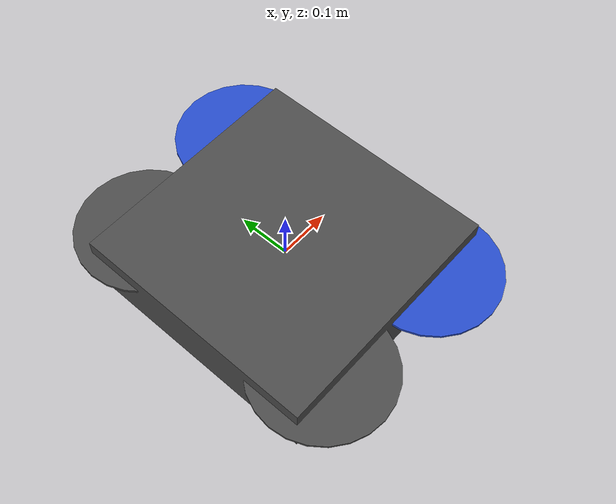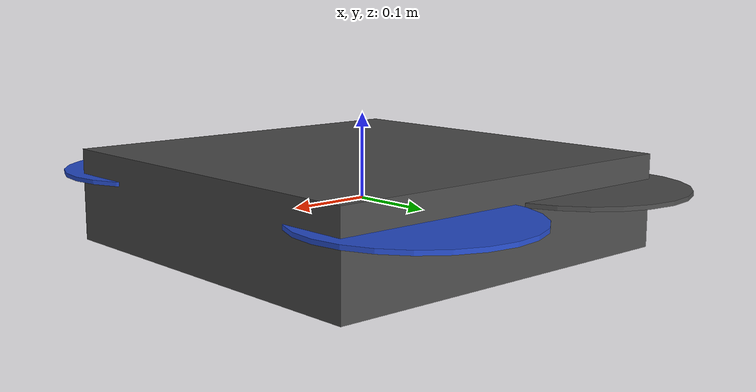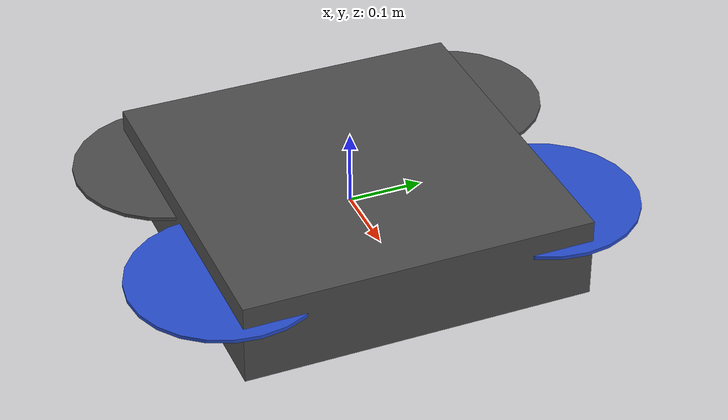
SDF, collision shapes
<sdf version='1.6'>
  <model name='iris'>
    <link name='base_link'>
      <pose frame=''>0 0 0 0 -0 0</pose>
      <inertial>
        <pose frame=''>0 0 0 0 -0 0</pose>
        <mass>1.5</mass>
        <inertia>
          <ixx>0.0347563</ixx>
          <ixy>0</ixy>
          <ixz>0</ixz>
          <iyy>0.0458929</iyy>
          <iyz>0</iyz>
          <izz>0.0977</izz>
        </inertia>
      </inertial>
      <collision name='base_link_inertia_collision'>
        <pose frame=''>0 0 0 0 -0 0</pose>
        <geometry>
          <box>
            <size>0.47 0.47 0.11</size>
          </box>
        </geometry>
        <surface>
          <contact>
            <ode>
              <min_depth>0.001</min_depth>
              <max_vel>0</max_vel>
            </ode>
          </contact>
          <friction>
            <ode/>
          </friction>
        </surface>
      </collision>
      <visual name='base_link_inertia_visual'>
        <pose frame=''>0 0 0 0 -0 0</pose>
        <geometry>
          <mesh>
            <scale>1 1 1</scale>
            <uri>model://rotors_description/meshes/iris.stl</uri>
          </mesh>
        </geometry>
        <material>
          <script>
            <name>Gazebo/DarkGrey</name>
            <uri>file://media/materials/scripts/gazebo.material</uri>
          </script>
        </material>
      </visual>
      <gravity>1</gravity>
      <velocity_decay/>
      <self_collide>0</self_collide>
    </link>
    <link name='/imu_link'>
      <pose frame=''>0 0 0 0 -0 0</pose>
      <inertial>
        <pose frame=''>0 0 0 0 -0 0</pose>
        <mass>0.015</mass>
        <inertia>
          <ixx>1e-05</ixx>
          <ixy>0</ixy>
          <ixz>0</ixz>
          <iyy>1e-05</iyy>
          <iyz>0</iyz>
          <izz>1e-05</izz>
        </inertia>
      </inertial>
    </link>
    <joint name='/imu_joint' type='revolute'>
      <child>/imu_link</child>
      <parent>base_link</parent>
      <axis>
        <xyz>1 0 0</xyz>
        <limit>
          <lower>0</lower>
          <upper>0</upper>
          <effort>0</effort>
          <velocity>0</velocity>
        </limit>
        <dynamics>
          <spring_reference>0</spring_reference>
          <spring_stiffness>0</spring_stiffness>
        </dynamics>
        <use_parent_model_frame>1</use_parent_model_frame>
      </axis>
    </joint>
    <link name='rotor_0'>
      <pose frame=''>0.126 -0.218 0.023 0 -0 0</pose>
      <inertial>
        <pose frame=''>0 0 0 0 -0 0</pose>
        <mass>0.005</mass>
        <inertia>
          <ixx>9.75e-07</ixx>
          <ixy>0</ixy>
          <ixz>0</ixz>
          <iyy>0.000273104</iyy>
          <iyz>0</iyz>
          <izz>0.000274004</izz>
        </inertia>
      </inertial>
      <collision name='rotor_0_collision'>
        <pose frame=''>0 0 0 0 -0 0</pose>
        <geometry>
          <cylinder>
            <length>0.005</length>
            <radius>0.128</radius>
          </cylinder>
        </geometry>
        <surface>
          <contact>
            <ode/>
          </contact>
          <friction>
            <ode/>
          </friction>
        </surface>
      </collision>
      <visual name='rotor_0_visual'>
        <pose frame=''>0 0 0 0 -0 0</pose>
        <geometry>
          <mesh>
            <scale>1 1 1</scale>
            <uri>model://rotors_description/meshes/iris_prop_ccw.dae</uri>
          </mesh>
        </geometry>
        <material>
          <script>
            <name>Gazebo/Blue</name>
            <uri>file://media/materials/scripts/gazebo.material</uri>
          </script>
        </material>
      </visual>
      <gravity>1</gravity>
      <velocity_decay/>
      <self_collide>0</self_collide>
    </link>
    <joint name='rotor_0_joint' type='revolute'>
      <child>rotor_0</child>
      <parent>base_link</parent>
      <axis>
        <xyz>0 0 1</xyz>
        <limit>
          <lower>-1e+16</lower>
          <upper>1e+16</upper>
        </limit>
        <dynamics>
          <spring_reference>0</spring_reference>
          <spring_stiffness>0</spring_stiffness>
        </dynamics>
        <use_parent_model_frame>1</use_parent_model_frame>
      </axis>
    </joint>
    <link name='rotor_1'>
      <pose frame=''>-0.138 0.203 0.023 0 -0 0</pose>
      <inertial>
        <pose frame=''>0 0 0 0 -0 0</pose>
        <mass>0.005</mass>
        <inertia>
          <ixx>9.75e-07</ixx>
          <ixy>0</ixy>
          <ixz>0</ixz>
          <iyy>0.000273104</iyy>
          <iyz>0</iyz>
          <izz>0.000274004</izz>
        </inertia>
      </inertial>
      <collision name='rotor_1_collision'>
        <pose frame=''>0 0 0 0 -0 0</pose>
        <geometry>
          <cylinder>
            <length>0.005</length>
            <radius>0.128</radius>
          </cylinder>
        </geometry>
        <surface>
          <contact>
            <ode/>
          </contact>
          <friction>
            <ode/>
          </friction>
        </surface>
      </collision>
      <visual name='rotor_1_visual'>
        <pose frame=''>0 0 0 0 -0 0</pose>
        <geometry>
          <mesh>
            <scale>1 1 1</scale>
            <uri>model://rotors_description/meshes/iris_prop_ccw.dae</uri>
          </mesh>
        </geometry>
        <material>
          <script>
            <name>Gazebo/DarkGrey</name>
            <uri>file://media/materials/scripts/gazebo.material</uri>
          </script>
        </material>
      </visual>
      <gravity>1</gravity>
      <velocity_decay/>
      <self_collide>0</self_collide>
    </link>
    <joint name='rotor_1_joint' type='revolute'>
      <child>rotor_1</child>
      <parent>base_link</parent>
      <axis>
        <xyz>0 0 1</xyz>
        <limit>
          <lower>-1e+16</lower>
          <upper>1e+16</upper>
        </limit>
        <dynamics>
          <spring_reference>0</spring_reference>
          <spring_stiffness>0</spring_stiffness>
        </dynamics>
        <use_parent_model_frame>1</use_parent_model_frame>
      </axis>
    </joint>
    <link name='rotor_2'>
      <pose frame=''>0.126 0.218 0.023 0 -0 0</pose>
      <inertial>
        <pose frame=''>0 0 0 0 -0 0</pose>
        <mass>0.005</mass>
        <inertia>
          <ixx>9.75e-07</ixx>
          <ixy>0</ixy>
          <ixz>0</ixz>
          <iyy>0.000273104</iyy>
          <iyz>0</iyz>
          <izz>0.000274004</izz>
        </inertia>
      </inertial>
      <collision name='rotor_2_collision'>
        <pose frame=''>0 0 0 0 -0 0</pose>
        <geometry>
          <cylinder>
            <length>0.005</length>
            <radius>0.128</radius>
          </cylinder>
        </geometry>
        <surface>
          <contact>
            <ode/>
          </contact>
          <friction>
            <ode/>
          </friction>
        </surface>
      </collision>
      <visual name='rotor_2_visual'>
        <pose frame=''>0 0 0 0 -0 0</pose>
        <geometry>
          <mesh>
            <scale>1 1 1</scale>
            <uri>model://rotors_description/meshes/iris_prop_cw.dae</uri>
          </mesh>
        </geometry>
        <material>
          <script>
            <name>Gazebo/Blue</name>
            <uri>file://media/materials/scripts/gazebo.material</uri>
          </script>
        </material>
      </visual>
      <gravity>1</gravity>
      <velocity_decay/>
      <self_collide>0</self_collide>
    </link>
    <joint name='rotor_2_joint' type='revolute'>
      <child>rotor_2</child>
      <parent>base_link</parent>
      <axis>
        <xyz>0 0 1</xyz>
        <limit>
          <lower>-1e+16</lower>
          <upper>1e+16</upper>
        </limit>
        <dynamics>
          <spring_reference>0</spring_reference>
          <spring_stiffness>0</spring_stiffness>
        </dynamics>
        <use_parent_model_frame>1</use_parent_model_frame>
      </axis>
    </joint>
    <link name='rotor_3'>
      <pose frame=''>-0.138 -0.203 0.023 0 -0 0</pose>
      <inertial>
        <pose frame=''>0 0 0 0 -0 0</pose>
        <mass>0.005</mass>
        <inertia>
          <ixx>9.75e-07</ixx>
          <ixy>0</ixy>
          <ixz>0</ixz>
          <iyy>0.000273104</iyy>
          <iyz>0</iyz>
          <izz>0.000274004</izz>
        </inertia>
      </inertial>
      <collision name='rotor_3_collision'>
        <pose frame=''>0 0 0 0 -0 0</pose>
        <geometry>
          <cylinder>
            <length>0.005</length>
            <radius>0.128</radius>
          </cylinder>
        </geometry>
        <surface>
          <contact>
            <ode/>
          </contact>
          <friction>
            <ode/>
          </friction>
        </surface>
      </collision>
      <visual name='rotor_3_visual'>
        <pose frame=''>0 0 0 0 -0 0</pose>
        <geometry>
          <mesh>
            <scale>1 1 1</scale>
            <uri>model://rotors_description/meshes/iris_prop_cw.dae</uri>
          </mesh>
        </geometry>
        <material>
          <script>
            <name>Gazebo/DarkGrey</name>
            <uri>file://media/materials/scripts/gazebo.material</uri>
          </script>
        </material>
      </visual>
      <gravity>1</gravity>
      <velocity_decay/>
      <self_collide>0</self_collide>
    </link>
    <joint name='rotor_3_joint' type='revolute'>
      <child>rotor_3</child>
      <parent>base_link</parent>
      <axis>
        <xyz>0 0 1</xyz>
        <limit>
          <lower>-1e+16</lower>
          <upper>1e+16</upper>
        </limit>
        <dynamics>
          <spring_reference>0</spring_reference>
          <spring_stiffness>0</spring_stiffness>
        </dynamics>
        <use_parent_model_frame>1</use_parent_model_frame>
      </axis>
    </joint>
    <link name='nozzle_0'>
      <pose frame=''>0.126 -0.218 0.013 0 -0 1.95</pose>
      <inertial>
        <pose frame=''>0 0 0 0 -0 0</pose>
        <mass>0.005</mass>
        <inertia>
          <ixx>9.75e-07</ixx>
          <ixy>0</ixy>
          <ixz>0</ixz>
          <iyy>0.000273104</iyy>
          <iyz>0</iyz>
          <izz>0.000274004</izz>
        </inertia>
      </inertial>
      <collision name='nozzle_0_collision'>
        <pose frame=''>0 0 0 0 -0 0</pose>
        <geometry>
          <cylinder>
            <length>0.005</length>
            <radius>0.001</radius>
          </cylinder>
        </geometry>
        <surface>
          <contact>
            <ode/>
          </contact>
          <friction>
            <ode/>
          </friction>
        </surface>
      </collision>
      <visual name='nozzle_0_visual'>
        <pose frame=''>0 0 0 0 -0 0</pose>
        <geometry>
          <mesh>
            <scale>1 1 1</scale>
            <uri>model://rotors_description/meshes/iris_prop_ccw.dae</uri>
          </mesh>
        </geometry>
        <material>
          <script>
            <name>Gazebo/Blue</name>
            <uri>file://media/materials/scripts/gazebo.material</uri>
          </script>
        </material>
      </visual>
      <gravity>1</gravity>
      <velocity_decay/>
      <self_collide>0</self_collide>
    </link>
    <joint name='nozzle_0_joint' type='revolute'>
      <child>nozzle_0</child>
      <parent>base_link</parent>
      <axis>
        <xyz>0 0 1</xyz>
        <limit>
          <lower>0</lower>
          <upper>0</upper>
        </limit>
        <dynamics>
          <spring_reference>0</spring_reference>
          <spring_stiffness>0</spring_stiffness>
        </dynamics>
        <use_parent_model_frame>1</use_parent_model_frame>
      </axis>
    </joint>
    <link name='nozzle_1'>
      <pose frame=''>-0.138 0.203 0.013 0 -0 -1.06</pose>
      <inertial>
        <pose frame=''>0 0 0 0 -0 0</pose>
        <mass>0.005</mass>
        <inertia>
          <ixx>9.75e-07</ixx>
          <ixy>0</ixy>
          <ixz>0</ixz>
          <iyy>0.000273104</iyy>
          <iyz>0</iyz>
          <izz>0.000274004</izz>
        </inertia>
      </inertial>
      <collision name='nozzle_1_collision'>
        <pose frame=''>0 0 0 0 -0 0</pose>
        <geometry>
          <cylinder>
            <length>0.005</length>
            <radius>0.001</radius>
          </cylinder>
        </geometry>
        <surface>
          <contact>
            <ode/>
          </contact>
          <friction>
            <ode/>
          </friction>
        </surface>
      </collision>
      <visual name='nozzle_1_visual'>
        <pose frame=''>0 0 0 0 -0 0</pose>
        <geometry>
          <mesh>
            <scale>1 1 1</scale>
            <uri>model://rotors_description/meshes/iris_prop_ccw.dae</uri>
          </mesh>
        </geometry>
        <material>
          <script>
            <name>Gazebo/DarkGrey</name>
            <uri>file://media/materials/scripts/gazebo.material</uri>
          </script>
        </material>
      </visual>
      <gravity>1</gravity>
      <velocity_decay/>
      <self_collide>0</self_collide>
    </link>
    <joint name='nozzle_1_joint' type='revolute'>
      <child>nozzle_1</child>
      <parent>base_link</parent>
      <axis>
        <xyz>0 0 1</xyz>
        <limit>
          <lower>0</lower>
          <upper>0</upper>
        </limit>
        <dynamics>
          <spring_reference>0</spring_reference>
          <spring_stiffness>0</spring_stiffness>
        </dynamics>
        <use_parent_model_frame>1</use_parent_model_frame>
      </axis>
    </joint>
    <link name='nozzle_2'>
      <pose frame=''>0.126 0.218 0.013 0 -0 -1.95</pose>
      <inertial>
        <pose frame=''>0 0 0 0 -0 0</pose>
        <mass>0.005</mass>
        <inertia>
          <ixx>9.75e-07</ixx>
          <ixy>0</ixy>
          <ixz>0</ixz>
          <iyy>0.000273104</iyy>
          <iyz>0</iyz>
          <izz>0.000274004</izz>
        </inertia>
      </inertial>
      <collision name='nozzle_2_collision'>
        <pose frame=''>0 0 0 0 -0 0</pose>
        <geometry>
          <cylinder>
            <length>0.005</length>
            <radius>0.001</radius>
          </cylinder>
        </geometry>
        <surface>
          <contact>
            <ode/>
          </contact>
          <friction>
            <ode/>
          </friction>
        </surface>
      </collision>
      <visual name='nozzle_2_visual'>
        <pose frame=''>0 0 0 0 -0 0</pose>
        <geometry>
          <mesh>
            <scale>1 1 1</scale>
            <uri>model://rotors_description/meshes/iris_prop_cw.dae</uri>
          </mesh>
        </geometry>
        <material>
          <script>
            <name>Gazebo/Blue</name>
            <uri>file://media/materials/scripts/gazebo.material</uri>
          </script>
        </material>
      </visual>
      <gravity>1</gravity>
      <velocity_decay/>
      <self_collide>0</self_collide>
    </link>
    <joint name='nozzle_2_joint' type='revolute'>
      <child>nozzle_2</child>
      <parent>base_link</parent>
      <axis>
        <xyz>0 0 1</xyz>
        <limit>
          <lower>0</lower>
          <upper>0</upper>
        </limit>
        <dynamics>
          <spring_reference>0</spring_reference>
          <spring_stiffness>0</spring_stiffness>
        </dynamics>
        <use_parent_model_frame>1</use_parent_model_frame>
      </axis>
    </joint>
    <link name='nozzle_3'>
      <pose frame=''>-0.138 -0.203 0.013 0 -0 1.06</pose>
      <inertial>
        <pose frame=''>0 0 0 0 -0 0</pose>
        <mass>0.005</mass>
        <inertia>
          <ixx>9.75e-07</ixx>
          <ixy>0</ixy>
          <ixz>0</ixz>
          <iyy>0.000273104</iyy>
          <iyz>0</iyz>
          <izz>0.000274004</izz>
        </inertia>
      </inertial>
      <collision name='nozzle_3_collision'>
        <pose frame=''>0 0 0 0 -0 0</pose>
        <geometry>
          <cylinder>
            <length>0.005</length>
            <radius>0.001</radius>
          </cylinder>
        </geometry>
        <surface>
          <contact>
            <ode/>
          </contact>
          <friction>
            <ode/>
          </friction>
        </surface>
      </collision>
      <visual name='nozzle_3_visual'>
        <pose frame=''>0 0 0 0 -0 0</pose>
        <geometry>
          <mesh>
            <scale>1 1 1</scale>
            <uri>model://rotors_description/meshes/iris_prop_cw.dae</uri>
          </mesh>
        </geometry>
        <material>
          <script>
            <name>Gazebo/DarkGrey</name>
            <uri>file://media/materials/scripts/gazebo.material</uri>
          </script>
        </material>
      </visual>
      <gravity>1</gravity>
      <velocity_decay/>
      <self_collide>0</self_collide>
    </link>
    <joint name='nozzle_3_joint' type='revolute'>
      <child>nozzle_3</child>
      <parent>base_link</parent>
      <axis>
        <xyz>0 0 1</xyz>
        <limit>
          <lower>0</lower>
          <upper>0</upper>
        </limit>
        <dynamics>
          <spring_reference>0</spring_reference>
          <spring_stiffness>0</spring_stiffness>
        </dynamics>
        <use_parent_model_frame>1</use_parent_model_frame>
      </axis>
    </joint>

    <plugin name='rosbag' filename='librotors_gazebo_multirotor_base_plugin.so'>
      <robotNamespace/>
      <linkName>base_link</linkName>
      <rotorVelocitySlowdownSim>10</rotorVelocitySlowdownSim>
    </plugin>
    <plugin name='front_right_motor_model' filename='librotors_gazebo_motor_model.so'>
      <robotNamespace/>
      <jointName>rotor_0_joint</jointName>
      <linkName>rotor_0</linkName>
      <turningDirection>ccw</turningDirection>
      <timeConstantUp>0.0125</timeConstantUp>
      <timeConstantDown>0.025</timeConstantDown>
      <maxRotVelocity>1100</maxRotVelocity>
      <motorConstant>8.54858e-06</motorConstant>
      <momentConstant>0.06</momentConstant>
      <commandSubTopic>/gazebo/command/motor_speed</commandSubTopic>
      <motorNumber>0</motorNumber>
      <rotorDragCoefficient>0.000806428</rotorDragCoefficient>
      <rollingMomentCoefficient>1e-06</rollingMomentCoefficient>
      <motorSpeedPubTopic>/motor_speed/0</motorSpeedPubTopic>
      <rotorVelocitySlowdownSim>10</rotorVelocitySlowdownSim>
    </plugin>
    <plugin name='back_left_motor_model' filename='librotors_gazebo_motor_model.so'>
      <robotNamespace/>
      <jointName>rotor_1_joint</jointName>
      <linkName>rotor_1</linkName>
      <turningDirection>ccw</turningDirection>
      <timeConstantUp>0.0125</timeConstantUp>
      <timeConstantDown>0.025</timeConstantDown>
      <maxRotVelocity>1100</maxRotVelocity>
      <motorConstant>8.54858e-06</motorConstant>
      <momentConstant>0.06</momentConstant>
      <commandSubTopic>/gazebo/command/motor_speed</commandSubTopic>
      <motorNumber>1</motorNumber>
      <rotorDragCoefficient>0.000806428</rotorDragCoefficient>
      <rollingMomentCoefficient>1e-06</rollingMomentCoefficient>
      <motorSpeedPubTopic>/motor_speed/1</motorSpeedPubTopic>
      <rotorVelocitySlowdownSim>10</rotorVelocitySlowdownSim>
    </plugin>
    <plugin name='front_left_motor_model' filename='librotors_gazebo_motor_model.so'>
      <robotNamespace/>
      <jointName>rotor_2_joint</jointName>
      <linkName>rotor_2</linkName>
      <turningDirection>cw</turningDirection>
      <timeConstantUp>0.0125</timeConstantUp>
      <timeConstantDown>0.025</timeConstantDown>
      <maxRotVelocity>1100</maxRotVelocity>
      <motorConstant>8.54858e-06</motorConstant>
      <momentConstant>0.06</momentConstant>
      <commandSubTopic>/gazebo/command/motor_speed</commandSubTopic>
      <motorNumber>2</motorNumber>
      <rotorDragCoefficient>0.000806428</rotorDragCoefficient>
      <rollingMomentCoefficient>1e-06</rollingMomentCoefficient>
      <motorSpeedPubTopic>/motor_speed/2</motorSpeedPubTopic>
      <rotorVelocitySlowdownSim>10</rotorVelocitySlowdownSim>
    </plugin>
    <plugin name='back_right_motor_model' filename='librotors_gazebo_motor_model.so'>
      <robotNamespace/>
      <jointName>rotor_3_joint</jointName>
      <linkName>rotor_3</linkName>
      <turningDirection>cw</turningDirection>
      <timeConstantUp>0.0125</timeConstantUp>
      <timeConstantDown>0.025</timeConstantDown>
      <maxRotVelocity>1100</maxRotVelocity>
      <motorConstant>8.54858e-06</motorConstant>
      <momentConstant>0.06</momentConstant>
      <commandSubTopic>/gazebo/command/motor_speed</commandSubTopic>
      <motorNumber>3</motorNumber>
      <rotorDragCoefficient>0.000806428</rotorDragCoefficient>
      <rollingMomentCoefficient>1e-06</rollingMomentCoefficient>
      <motorSpeedPubTopic>/motor_speed/3</motorSpeedPubTopic>
      <rotorVelocitySlowdownSim>10</rotorVelocitySlowdownSim>
    </plugin>
    <plugin name='front_right_nozzle_model' filename='librotors_gazebo_nozzle_model.so'>
      <robotNamespace/>
      <jointName>nozzle_0_joint</jointName>
      <linkName>nozzle_0</linkName>
      <turningDirection>ccw</turningDirection>
      <timeConstantUp>0.0125</timeConstantUp>
      <timeConstantDown>0.025</timeConstantDown>
      <maxRotVelocity>1100</maxRotVelocity>
      <motorConstant>8.54858e-06</motorConstant>
      <momentConstant>0.06</momentConstant>
      <commandSubTopic>/gazebo/command/motor_speed</commandSubTopic>
      <nozzleNumber>4</nozzleNumber>
      <rotorDragCoefficient>0.000806428</rotorDragCoefficient>
      <rollingMomentCoefficient>1e-06</rollingMomentCoefficient>
      <motorSpeedPubTopic>/nozzle_speed/0</motorSpeedPubTopic>
      <rotorVelocitySlowdownSim>10</rotorVelocitySlowdownSim>
    </plugin>
    <plugin name='back_left_nozzle_model' filename='librotors_gazebo_nozzle_model.so'>
      <robotNamespace/>
      <jointName>nozzle_1_joint</jointName>
      <linkName>nozzle_1</linkName>
      <turningDirection>ccw</turningDirection>
      <timeConstantUp>0.0125</timeConstantUp>
      <timeConstantDown>0.025</timeConstantDown>
      <maxRotVelocity>1100</maxRotVelocity>
      <motorConstant>8.54858e-06</motorConstant>
      <momentConstant>0.06</momentConstant>
      <commandSubTopic>/gazebo/command/motor_speed</commandSubTopic>
      <nozzleNumber>5</nozzleNumber>
      <rotorDragCoefficient>0.000806428</rotorDragCoefficient>
      <rollingMomentCoefficient>1e-06</rollingMomentCoefficient>
      <motorSpeedPubTopic>/nozzle_speed/1</motorSpeedPubTopic>
      <rotorVelocitySlowdownSim>10</rotorVelocitySlowdownSim>
    </plugin>
    <plugin name='front_left_nozzle_model' filename='librotors_gazebo_nozzle_model.so'>
      <robotNamespace/>
      <jointName>nozzle_2_joint</jointName>
      <linkName>nozzle_2</linkName>
      <turningDirection>cw</turningDirection>
      <timeConstantUp>0.0125</timeConstantUp>
      <timeConstantDown>0.025</timeConstantDown>
      <maxRotVelocity>1100</maxRotVelocity>
      <motorConstant>8.54858e-06</motorConstant>
      <momentConstant>0.06</momentConstant>
      <commandSubTopic>/gazebo/command/motor_speed</commandSubTopic>
      <nozzleNumber>6</nozzleNumber>
      <rotorDragCoefficient>0.000806428</rotorDragCoefficient>
      <rollingMomentCoefficient>1e-06</rollingMomentCoefficient>
      <motorSpeedPubTopic>/nozzle_speed/2</motorSpeedPubTopic>
      <rotorVelocitySlowdownSim>10</rotorVelocitySlowdownSim>
    </plugin>
    <plugin name='back_right_nozzle_model' filename='librotors_gazebo_nozzle_model.so'>
      <robotNamespace/>
      <jointName>nozzle_3_joint</jointName>
      <linkName>nozzle_3</linkName>
      <turningDirection>cw</turningDirection>
      <timeConstantUp>0.0125</timeConstantUp>
      <timeConstantDown>0.025</timeConstantDown>
      <maxRotVelocity>1100</maxRotVelocity>
      <motorConstant>8.54858e-06</motorConstant>
      <momentConstant>0.06</momentConstant>
      <commandSubTopic>/gazebo/command/motor_speed</commandSubTopic>
      <nozzleNumber>7</nozzleNumber>
      <rotorDragCoefficient>0.000806428</rotorDragCoefficient>
      <rollingMomentCoefficient>1e-06</rollingMomentCoefficient>
      <motorSpeedPubTopic>/nozzle_speed/3</motorSpeedPubTopic>
      <rotorVelocitySlowdownSim>10</rotorVelocitySlowdownSim>
    </plugin>
    <plugin name='gps_plugin' filename='libgazebo_gps_plugin.so'>
      <robotNamespace/>
      <gpsNoise>true</gpsNoise>
    </plugin>
    <plugin name='mavlink_interface' filename='librotors_gazebo_mavlink_interface.so'>
      <robotNamespace/>
      <imuSubTopic>/imu</imuSubTopic>
      <gpsSubTopic>/gps</gpsSubTopic>
      <mavlink_addr>INADDR_ANY</mavlink_addr>
      <mavlink_udp_port>14560</mavlink_udp_port>
      <serialEnabled>false</serialEnabled>
      <serialDevice>/dev/ttyACM0</serialDevice>
      <baudRate>921600</baudRate>
      <qgc_addr>INADDR_ANY</qgc_addr>
      <qgc_udp_port>14550</qgc_udp_port>
      <hil_mode>false</hil_mode>
      <hil_state_level>false</hil_state_level>
      <vehicle_is_tailsitter>false</vehicle_is_tailsitter>
      <motorSpeedCommandPubTopic>/gazebo/command/motor_speed</motorSpeedCommandPubTopic>
      <control_channels>
        <channel name='rotor1'>
          <input_index>0</input_index>
          <input_offset>0</input_offset>
          <input_scaling>1000</input_scaling>
          <zero_position_disarmed>0</zero_position_disarmed>
          <zero_position_armed>100</zero_position_armed>
          <joint_control_type>velocity</joint_control_type>
          <joint_control_pid>
            <p>0.001</p>
            <i>0.0001</i>
            <d>0.0001</d>
            <iMax>0.0</iMax>
            <iMin>0.0</iMin>
            <cmdMax>2</cmdMax>
            <cmdMin>-2</cmdMin>
          </joint_control_pid>
          <joint_name>rotor_0_joint</joint_name>
        </channel>
        <channel name='rotor2'>
          <input_index>1</input_index>
          <input_offset>0</input_offset>
          <input_scaling>1000</input_scaling>
          <zero_position_disarmed>0</zero_position_disarmed>
          <zero_position_armed>100</zero_position_armed>
          <joint_control_type>velocity</joint_control_type>
          <joint_control_pid>
            <p>0.001</p>
            <i>0.0001</i>
            <d>0.0001</d>
            <iMax>0.0</iMax>
            <iMin>0.0</iMin>
            <cmdMax>2</cmdMax>
            <cmdMin>-2</cmdMin>
          </joint_control_pid>
          <joint_name>rotor_1_joint</joint_name>
        </channel>
        <channel name='rotor3'>
          <input_index>2</input_index>
          <input_offset>0</input_offset>
          <input_scaling>1000</input_scaling>
          <zero_position_disarmed>0</zero_position_disarmed>
          <zero_position_armed>100</zero_position_armed>
          <joint_control_type>velocity</joint_control_type>
          <joint_control_pid>
            <p>0.001</p>
            <i>0.0001</i>
            <d>0.0001</d>
            <iMax>0.0</iMax>
            <iMin>0.0</iMin>
            <cmdMax>2</cmdMax>
            <cmdMin>-2</cmdMin>
          </joint_control_pid>
          <joint_name>rotor_2_joint</joint_name>
        </channel>
        <channel name='rotor4'>
          <input_index>3</input_index>
          <input_offset>0</input_offset>
          <input_scaling>1000</input_scaling>
          <zero_position_disarmed>0</zero_position_disarmed>
          <zero_position_armed>100</zero_position_armed>
          <joint_control_type>velocity</joint_control_type>
          <joint_control_pid>
            <p>0.001</p>
            <i>0.0001</i>
            <d>0.0001</d>
            <iMax>0.0</iMax>
            <iMin>0.0</iMin>
            <cmdMax>2</cmdMax>
            <cmdMin>-2</cmdMin>
          </joint_control_pid>
          <joint_name>rotor_3_joint</joint_name>
        </channel>
        <channel name='nozzle1'>
          <input_index>4</input_index>
          <input_offset>0</input_offset>
          <input_scaling>1</input_scaling>
          <zero_position_disarmed>0</zero_position_disarmed>
          <zero_position_armed>0</zero_position_armed>
          <joint_control_type>velocity</joint_control_type>
          <joint_name>nozzle_0_joint</joint_name>
        </channel>
        <channel name='nozzle2'>
          <input_index>5</input_index>
          <input_offset>0</input_offset>
          <input_scaling>1</input_scaling>
          <zero_position_disarmed>0</zero_position_disarmed>
          <zero_position_armed>0</zero_position_armed>
          <joint_control_type>velocity</joint_control_type>
          <joint_name>nozzle_1_joint</joint_name>
        </channel>
        <channel name='nozzle3'>
          <input_index>6</input_index>
          <input_offset>0</input_offset>
          <input_scaling>1</input_scaling>
          <zero_position_disarmed>0</zero_position_disarmed>
          <zero_position_armed>0</zero_position_armed>
          <joint_control_type>velocity</joint_control_type>
          <joint_name>nozzle_2_joint</joint_name>
        </channel>
        <channel name='nozzle4'>
          <input_index>7</input_index>
          <input_offset>0</input_offset>
          <input_scaling>1</input_scaling>
          <zero_position_disarmed>0</zero_position_disarmed>
          <zero_position_armed>0</zero_position_armed>
          <joint_control_type>velocity</joint_control_type>
          <joint_name>nozzle_3_joint</joint_name>
        </channel>
      </control_channels>
    </plugin>
    <static>0</static>
    <plugin name='rotors_gazebo_imu_plugin' filename='librotors_gazebo_imu_plugin.so'>
      <robotNamespace/>
      <linkName>/imu_link</linkName>
      <imuTopic>/imu</imuTopic>
      <gyroscopeNoiseDensity>0.0003394</gyroscopeNoiseDensity>
      <gyroscopeRandomWalk>3.8785e-05</gyroscopeRandomWalk>
      <gyroscopeBiasCorrelationTime>1000.0</gyroscopeBiasCorrelationTime>
      <gyroscopeTurnOnBiasSigma>0.0087</gyroscopeTurnOnBiasSigma>
      <accelerometerNoiseDensity>0.004</accelerometerNoiseDensity>
      <accelerometerRandomWalk>0.006</accelerometerRandomWalk>
      <accelerometerBiasCorrelationTime>300.0</accelerometerBiasCorrelationTime>
      <accelerometerTurnOnBiasSigma>0.196</accelerometerTurnOnBiasSigma>
    </plugin>
  </model>
</sdf>
